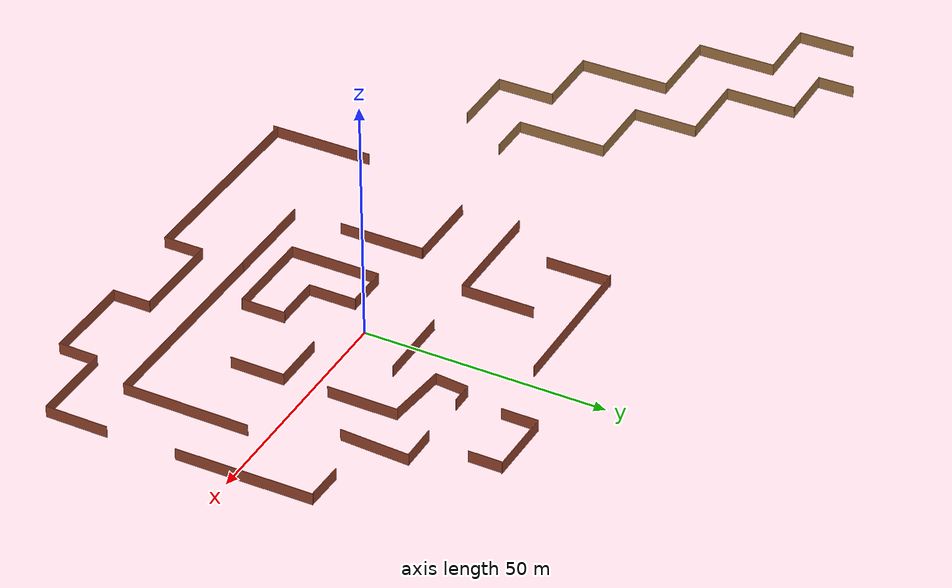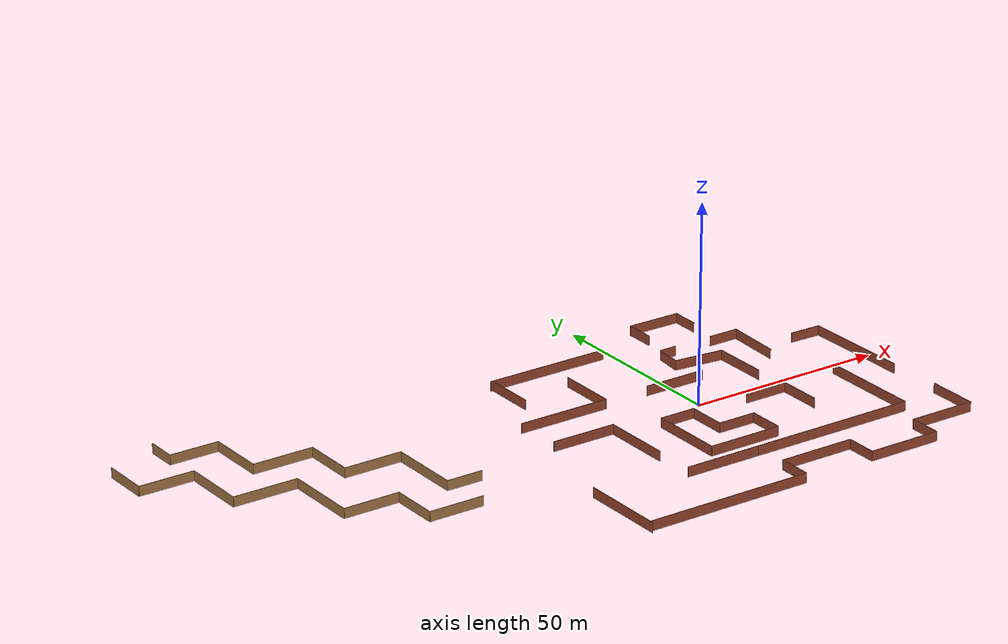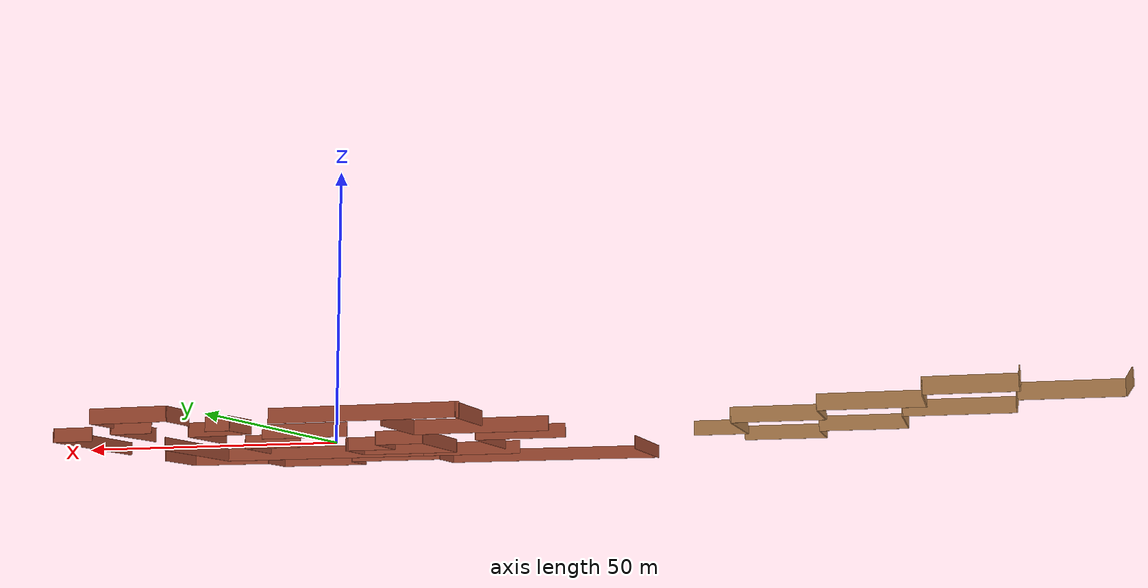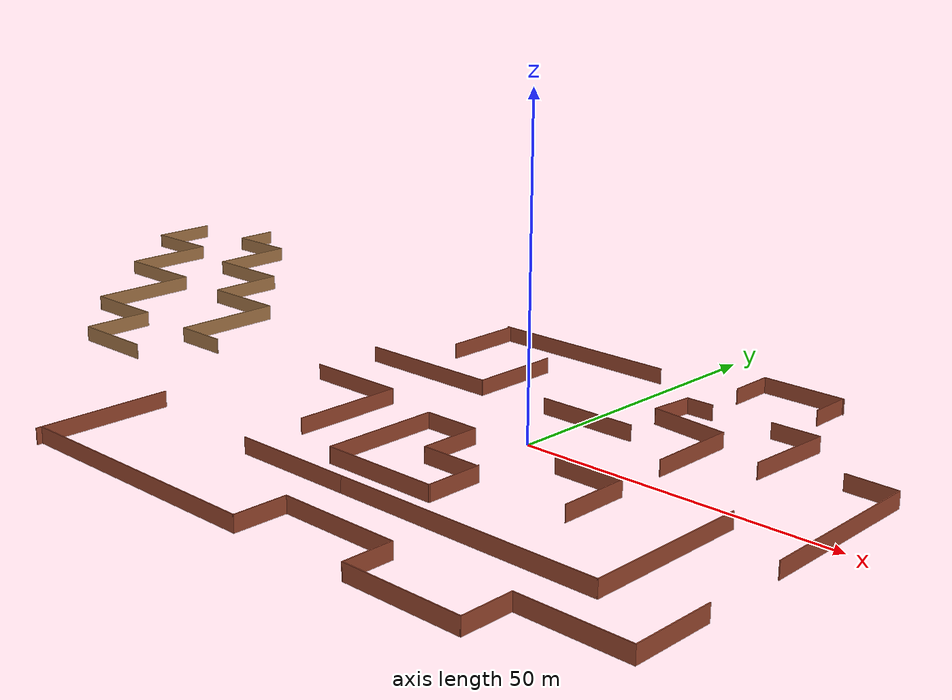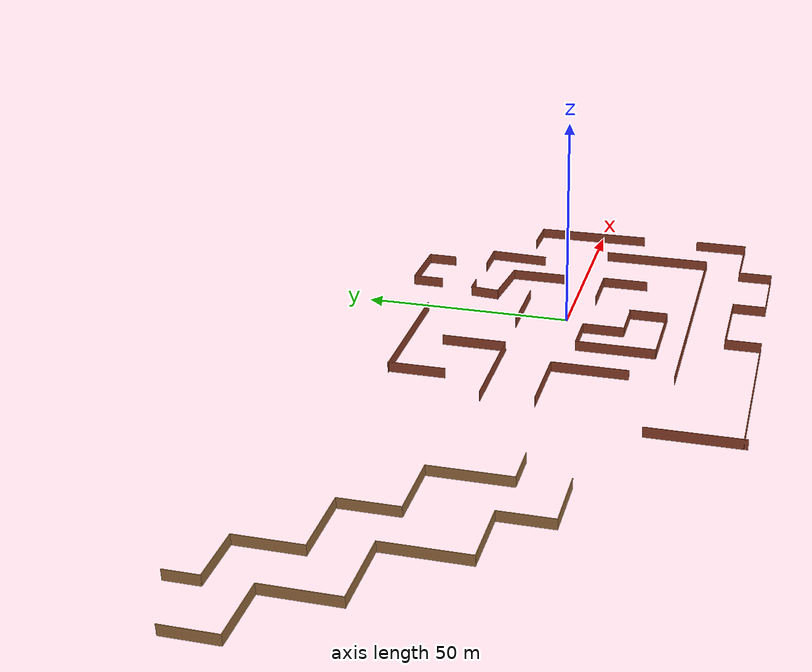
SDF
<?xml version='1.0'?>
<sdf version='1.6'>
  <model name='urambumba'>
    <pose frame=''>-40.7011 0.808842 0 0 -0 0</pose>
    <link name='Wall_10'>
      <collision name='Wall_10_Collision'>
        <geometry>
          <box>
            <size>18 0.15 2.5</size>
          </box>
        </geometry>
        <pose frame=''>0 0 1.25 0 -0 0</pose>
      </collision>
      <visual name='Wall_10_Visual'>
        <pose frame=''>0 0 1.25 0 -0 0</pose>
        <geometry>
          <box>
            <size>18 0.15 2.5</size>
          </box>
        </geometry>
        <material>
          <script>
            <uri>file://media/materials/scripts/gazebo.material</uri>
            <name>Gazebo/Bricks</name>
          </script>
          <ambient>1 1 1 1</ambient>
        </material>
        <meta>
          <layer>0</layer>
        </meta>
      </visual>
      <pose frame=''>15.1254 -11.29 0 0 -0 1.5708</pose>
    </link>
    <link name='Wall_11'>
      <collision name='Wall_11_Collision'>
        <geometry>
          <box>
            <size>16.5 0.15 2.5</size>
          </box>
        </geometry>
        <pose frame=''>0 0 1.25 0 -0 0</pose>
      </collision>
      <visual name='Wall_11_Visual'>
        <pose frame=''>0 0 1.25 0 -0 0</pose>
        <geometry>
          <box>
            <size>16.5 0.15 2.5</size>
          </box>
        </geometry>
        <material>
          <script>
            <uri>file://media/materials/scripts/gazebo.material</uri>
            <name>Gazebo/Bricks</name>
          </script>
          <ambient>1 1 1 1</ambient>
        </material>
        <meta>
          <layer>0</layer>
        </meta>
      </visual>
      <pose frame=''>6.95037 -2.36503 0 0 -0 3.14159</pose>
    </link>
    <link name='Wall_13'>
      <collision name='Wall_13_Collision'>
        <geometry>
          <box>
            <size>23.75 0.15 2.5</size>
          </box>
        </geometry>
        <pose frame=''>0 0 1.25 0 -0 0</pose>
      </collision>
      <visual name='Wall_13_Visual'>
        <pose frame=''>0 0 1.25 0 -0 0</pose>
        <geometry>
          <box>
            <size>23.75 0.15 2.5</size>
          </box>
        </geometry>
        <material>
          <script>
            <uri>file://media/materials/scripts/gazebo.material</uri>
            <name>Gazebo/Bricks</name>
          </script>
          <ambient>1 1 1 1</ambient>
        </material>
        <meta>
          <layer>0</layer>
        </meta>
      </visual>
      <pose frame=''>10.2315 9.8994 0 0 -0 0</pose>
    </link>
    <link name='Wall_14'>
      <collision name='Wall_14_Collision'>
        <geometry>
          <box>
            <size>15.25 0.15 2.5</size>
          </box>
        </geometry>
        <pose frame=''>0 0 1.25 0 -0 0</pose>
      </collision>
      <visual name='Wall_14_Visual'>
        <pose frame=''>0 0 1.25 0 -0 0</pose>
        <geometry>
          <box>
            <size>15.25 0.15 2.5</size>
          </box>
        </geometry>
        <material>
          <script>
            <uri>file://media/materials/scripts/gazebo.material</uri>
            <name>Gazebo/Bricks</name>
          </script>
          <ambient>1 1 1 1</ambient>
        </material>
        <meta>
          <layer>0</layer>
        </meta>
      </visual>
      <pose frame=''>22.0315 17.4494 0 0 -0 1.5708</pose>
    </link>
    <link name='Wall_16'>
      <collision name='Wall_16_Collision'>
        <geometry>
          <box>
            <size>32 0.15 2.5</size>
          </box>
        </geometry>
        <pose frame=''>0 0 1.25 0 -0 0</pose>
      </collision>
      <visual name='Wall_16_Visual'>
        <pose frame=''>0 0 1.25 0 -0 0</pose>
        <geometry>
          <box>
            <size>32 0.15 2.5</size>
          </box>
        </geometry>
        <material>
          <script>
            <uri>file://media/materials/scripts/gazebo.material</uri>
            <name>Gazebo/Bricks</name>
          </script>
          <ambient>1 1 1 1</ambient>
        </material>
        <meta>
          <layer>0</layer>
        </meta>
      </visual>
      <pose frame=''>22.0488 33.3036 0 0 -0 0</pose>
    </link>
    <link name='Wall_18'>
      <collision name='Wall_18_Collision'>
        <geometry>
          <box>
            <size>13.5 0.15 2.5</size>
          </box>
        </geometry>
        <pose frame=''>0 0 1.25 0 -0 0</pose>
      </collision>
      <visual name='Wall_18_Visual'>
        <pose frame=''>0 0 1.25 0 -0 0</pose>
        <geometry>
          <box>
            <size>13.5 0.15 2.5</size>
          </box>
        </geometry>
        <material>
          <script>
            <uri>file://media/materials/scripts/gazebo.material</uri>
            <name>Gazebo/Bricks</name>
          </script>
          <ambient>1 1 1 1</ambient>
        </material>
        <meta>
          <layer>0</layer>
        </meta>
      </visual>
      <pose frame=''>6.61477 26.7922 0 0 -0 -1.5708</pose>
    </link>
    <link name='Wall_2'>
      <collision name='Wall_2_Collision'>
        <geometry>
          <box>
            <size>19.75 0.15 2.5</size>
          </box>
        </geometry>
        <pose frame=''>0 0 1.25 0 -0 0</pose>
      </collision>
      <visual name='Wall_2_Visual'>
        <pose frame=''>0 0 1.25 0 -0 0</pose>
        <geometry>
          <box>
            <size>19.75 0.15 2.5</size>
          </box>
        </geometry>
        <material>
          <script>
            <uri>file://media/materials/scripts/gazebo.material</uri>
            <name>Gazebo/Bricks</name>
          </script>
          <ambient>1 1 1 1</ambient>
        </material>
        <meta>
          <layer>0</layer>
        </meta>
      </visual>
      <pose frame=''>25.089 -30.5259 0 0 -0 0</pose>
    </link>
    <link name='Wall_21'>
      <collision name='Wall_21_Collision'>
        <geometry>
          <box>
            <size>16 0.15 2.5</size>
          </box>
        </geometry>
        <pose frame=''>0 0 1.25 0 -0 0</pose>
      </collision>
      <visual name='Wall_21_Visual'>
        <pose frame=''>0 0 1.25 0 -0 0</pose>
        <geometry>
          <box>
            <size>16 0.15 2.5</size>
          </box>
        </geometry>
        <material>
          <script>
            <uri>file://media/materials/scripts/gazebo.material</uri>
            <name>Gazebo/Bricks</name>
          </script>
          <ambient>1 1 1 1</ambient>
        </material>
        <meta>
          <layer>0</layer>
        </meta>
      </visual>
      <pose frame=''>42.0356 10.3904 0 0 -0 0</pose>
    </link>
    <link name='Wall_26'>
      <collision name='Wall_26_Collision'>
        <geometry>
          <box>
            <size>9.35849 0.15 2.5</size>
          </box>
        </geometry>
        <pose frame=''>0 0 1.25 0 -0 0</pose>
      </collision>
      <visual name='Wall_26_Visual'>
        <pose frame=''>0 0 1.25 0 -0 0</pose>
        <geometry>
          <box>
            <size>9.35849 0.15 2.5</size>
          </box>
        </geometry>
        <material>
          <script>
            <uri>file://media/materials/scripts/gazebo.material</uri>
            <name>Gazebo/Bricks</name>
          </script>
          <ambient>1 1 1 1</ambient>
        </material>
        <meta>
          <layer>0</layer>
        </meta>
      </visual>
      <pose frame=''>45.059 -20.0809 0 0 -0 -1.5708</pose>
    </link>
    <link name='Wall_27'>
      <collision name='Wall_27_Collision'>
        <geometry>
          <box>
            <size>19 0.15 2.5</size>
          </box>
        </geometry>
        <pose frame=''>0 0 1.25 0 -0 0</pose>
      </collision>
      <visual name='Wall_27_Visual'>
        <pose frame=''>0 0 1.25 0 -0 0</pose>
        <geometry>
          <box>
            <size>19 0.15 2.5</size>
          </box>
        </geometry>
        <material>
          <script>
            <uri>file://media/materials/scripts/gazebo.material</uri>
            <name>Gazebo/Bricks</name>
          </script>
          <ambient>1 1 1 1</ambient>
        </material>
        <meta>
          <layer>0</layer>
        </meta>
      </visual>
      <pose frame=''>35.634 -24.6851 0 0 -0 3.14159</pose>
    </link>
    <link name='Wall_28'>
      <collision name='Wall_28_Collision'>
        <geometry>
          <box>
            <size>19 0.15 2.5</size>
          </box>
        </geometry>
        <pose frame=''>0 0 1.25 0 -0 0</pose>
      </collision>
      <visual name='Wall_28_Visual'>
        <pose frame=''>0 0 1.25 0 -0 0</pose>
        <geometry>
          <box>
            <size>19 0.15 2.5</size>
          </box>
        </geometry>
        <material>
          <script>
            <uri>file://media/materials/scripts/gazebo.material</uri>
            <name>Gazebo/Bricks</name>
          </script>
          <ambient>1 1 1 1</ambient>
        </material>
        <meta>
          <layer>0</layer>
        </meta>
      </visual>
      <pose frame=''>26.209 -15.2601 0 0 -0 1.5708</pose>
    </link>
    <link name='Wall_3'>
      <collision name='Wall_3_Collision'>
        <geometry>
          <box>
            <size>42.5 0.15 2.5</size>
          </box>
        </geometry>
        <pose frame=''>0 0 1.25 0 -0 0</pose>
      </collision>
      <visual name='Wall_3_Visual'>
        <pose frame=''>0 0 1.25 0 -0 0</pose>
        <geometry>
          <box>
            <size>42.5 0.15 2.5</size>
          </box>
        </geometry>
        <material>
          <script>
            <uri>file://media/materials/scripts/gazebo.material</uri>
            <name>Gazebo/Bricks</name>
          </script>
          <ambient>1 1 1 1</ambient>
        </material>
        <meta>
          <layer>0</layer>
        </meta>
      </visual>
      <pose frame=''>56.064 -30.5259 0 0 -0 0</pose>
    </link>
    <link name='Wall_30'>
      <collision name='Wall_30_Collision'>
        <geometry>
          <box>
            <size>9.25 0.15 2.5</size>
          </box>
        </geometry>
        <pose frame=''>0 0 1.25 0 -0 0</pose>
      </collision>
      <visual name='Wall_30_Visual'>
        <pose frame=''>0 0 1.25 0 -0 0</pose>
        <geometry>
          <box>
            <size>9.25 0.15 2.5</size>
          </box>
        </geometry>
        <material>
          <script>
            <uri>file://media/materials/scripts/gazebo.material</uri>
            <name>Gazebo/Bricks</name>
          </script>
          <ambient>1 1 1 1</ambient>
        </material>
        <meta>
          <layer>0</layer>
        </meta>
      </visual>
      <pose frame=''>30.759 -5.83514 0 0 -0 0</pose>
    </link>
    <link name='Wall_31'>
      <collision name='Wall_31_Collision'>
        <geometry>
          <box>
            <size>10 0.15 2.5</size>
          </box>
        </geometry>
        <pose frame=''>0 0 1.25 0 -0 0</pose>
      </collision>
      <visual name='Wall_31_Visual'>
        <pose frame=''>0 0 1.25 0 -0 0</pose>
        <geometry>
          <box>
            <size>10 0.15 2.5</size>
          </box>
        </geometry>
        <material>
          <script>
            <uri>file://media/materials/scripts/gazebo.material</uri>
            <name>Gazebo/Bricks</name>
          </script>
          <ambient>1 1 1 1</ambient>
        </material>
        <meta>
          <layer>0</layer>
        </meta>
      </visual>
      <pose frame=''>35.309 -10.7601 0 0 -0 -1.5708</pose>
    </link>
    <link name='Wall_32'>
      <collision name='Wall_32_Collision'>
        <geometry>
          <box>
            <size>9.5 0.15 2.5</size>
          </box>
        </geometry>
        <pose frame=''>0 0 1.25 0 -0 0</pose>
      </collision>
      <visual name='Wall_32_Visual'>
        <pose frame=''>0 0 1.25 0 -0 0</pose>
        <geometry>
          <box>
            <size>9.5 0.15 2.5</size>
          </box>
        </geometry>
        <material>
          <script>
            <uri>file://media/materials/scripts/gazebo.material</uri>
            <name>Gazebo/Bricks</name>
          </script>
          <ambient>1 1 1 1</ambient>
        </material>
        <meta>
          <layer>0</layer>
        </meta>
      </visual>
      <pose frame=''>39.984 -15.6851 0 0 -0 0</pose>
    </link>
    <link name='Wall_34'>
      <collision name='Wall_34_Collision'>
        <geometry>
          <box>
            <size>14.5 0.15 2.5</size>
          </box>
        </geometry>
        <pose frame=''>0 0 1.25 0 -0 0</pose>
      </collision>
      <visual name='Wall_34_Visual'>
        <pose frame=''>0 0 1.25 0 -0 0</pose>
        <geometry>
          <box>
            <size>14.5 0.15 2.5</size>
          </box>
        </geometry>
        <material>
          <script>
            <uri>file://media/materials/scripts/gazebo.material</uri>
            <name>Gazebo/Bricks</name>
          </script>
          <ambient>1 1 1 1</ambient>
        </material>
        <meta>
          <layer>0</layer>
        </meta>
      </visual>
      <pose frame=''>60.7753 9.99505 0 0 -0 1.5708</pose>
    </link>
    <link name='Wall_35'>
      <collision name='Wall_35_Collision'>
        <geometry>
          <box>
            <size>12.6255 0.15 2.5</size>
          </box>
        </geometry>
        <pose frame=''>0 0 1.25 0 -0 0</pose>
      </collision>
      <visual name='Wall_35_Visual'>
        <pose frame=''>0 0 1.25 0 -0 0</pose>
        <geometry>
          <box>
            <size>12.6255 0.15 2.5</size>
          </box>
        </geometry>
        <material>
          <script>
            <uri>file://media/materials/scripts/gazebo.material</uri>
            <name>Gazebo/Bricks</name>
          </script>
          <ambient>1 1 1 1</ambient>
        </material>
        <meta>
          <layer>0</layer>
        </meta>
      </visual>
      <pose frame=''>54.4904 17.7364 0 0 -0 3.03764</pose>
    </link>
    <link name='Wall_36'>
      <collision name='Wall_36_Collision'>
        <geometry>
          <box>
            <size>7.05431 0.15 2.5</size>
          </box>
        </geometry>
        <pose frame=''>0 0 1.25 0 -0 0</pose>
      </collision>
      <visual name='Wall_36_Visual'>
        <pose frame=''>0 0 1.25 0 -0 0</pose>
        <geometry>
          <box>
            <size>7.05431 0.15 2.5</size>
          </box>
        </geometry>
        <material>
          <script>
            <uri>file://media/materials/scripts/gazebo.material</uri>
            <name>Gazebo/Bricks</name>
          </script>
          <ambient>1 1 1 1</ambient>
        </material>
        <meta>
          <layer>0</layer>
        </meta>
      </visual>
      <pose frame=''>48.6118 21.8205 0 0 -0 1.47637</pose>
    </link>
    <link name='Wall_38'>
      <collision name='Wall_38_Collision'>
        <geometry>
          <box>
            <size>14.2885 0.15 2.5</size>
          </box>
        </geometry>
        <pose frame=''>0 0 1.25 0 -0 0</pose>
      </collision>
      <visual name='Wall_38_Visual'>
        <pose frame=''>0 0 1.25 0 -0 0</pose>
        <geometry>
          <box>
            <size>14.2885 0.15 2.5</size>
          </box>
        </geometry>
        <material>
          <script>
            <uri>file://media/materials/scripts/gazebo.material</uri>
            <name>Gazebo/Bricks</name>
          </script>
          <ambient>1 1 1 1</ambient>
        </material>
        <meta>
          <layer>0</layer>
        </meta>
      </visual>
      <pose frame=''>70.8557 18.0885 0 0 -0 -1.61685</pose>
    </link>
    <link name='Wall_4'>
      <collision name='Wall_4_Collision'>
        <geometry>
          <box>
            <size>26.25 0.15 2.5</size>
          </box>
        </geometry>
        <pose frame=''>0 0 1.25 0 -0 0</pose>
      </collision>
      <visual name='Wall_4_Visual'>
        <pose frame=''>0 0 1.25 0 -0 0</pose>
        <geometry>
          <box>
            <size>26.25 0.15 2.5</size>
          </box>
        </geometry>
        <material>
          <script>
            <uri>file://media/materials/scripts/gazebo.material</uri>
            <name>Gazebo/Bricks</name>
          </script>
          <ambient>1 1 1 1</ambient>
        </material>
        <meta>
          <layer>0</layer>
        </meta>
      </visual>
      <pose frame=''>77.239 -17.4759 0 0 -0 1.5708</pose>
    </link>
    <link name='Wall_40'>
      <collision name='Wall_40_Collision'>
        <geometry>
          <box>
            <size>4.5 0.15 2.5</size>
          </box>
        </geometry>
        <pose frame=''>0 0 1.25 0 -0 0</pose>
      </collision>
      <visual name='Wall_40_Visual'>
        <pose frame=''>0 0 1.25 0 -0 0</pose>
        <geometry>
          <box>
            <size>4.5 0.15 2.5</size>
          </box>
        </geometry>
        <material>
          <script>
            <uri>file://media/materials/scripts/gazebo.material</uri>
            <name>Gazebo/Bricks</name>
          </script>
          <ambient>1 1 1 1</ambient>
        </material>
        <meta>
          <layer>0</layer>
        </meta>
      </visual>
      <pose frame=''>51.1123 25.2573 0 0 -0 0</pose>
    </link>
    <link name='Wall_42'>
      <collision name='Wall_42_Collision'>
        <geometry>
          <box>
            <size>7.75 0.15 2.5</size>
          </box>
        </geometry>
        <pose frame=''>0 0 1.25 0 -0 0</pose>
      </collision>
      <visual name='Wall_42_Visual'>
        <pose frame=''>0 0 1.25 0 -0 0</pose>
        <geometry>
          <box>
            <size>7.75 0.15 2.5</size>
          </box>
        </geometry>
        <material>
          <script>
            <uri>file://media/materials/scripts/gazebo.material</uri>
            <name>Gazebo/Bricks</name>
          </script>
          <ambient>1 1 1 1</ambient>
        </material>
        <meta>
          <layer>0</layer>
        </meta>
      </visual>
      <pose frame=''>67.2801 25.1282 0 0 -0 3.14159</pose>
    </link>
    <link name='Wall_44'>
      <collision name='Wall_44_Collision'>
        <geometry>
          <box>
            <size>7.84706 0.15 2.5</size>
          </box>
        </geometry>
        <pose frame=''>0 0 1.25 0 -0 0</pose>
      </collision>
      <visual name='Wall_44_Visual'>
        <pose frame=''>0 0 1.25 0 -0 0</pose>
        <geometry>
          <box>
            <size>7.84706 0.15 2.5</size>
          </box>
        </geometry>
        <material>
          <script>
            <uri>file://media/materials/scripts/gazebo.material</uri>
            <name>Gazebo/Bricks</name>
          </script>
          <ambient>1 1 1 1</ambient>
        </material>
        <meta>
          <layer>0</layer>
        </meta>
      </visual>
      <pose frame=''>84.466 15.5754 0 0 -0 -0.027582</pose>
    </link>
    <link name='Wall_45'>
      <collision name='Wall_45_Collision'>
        <geometry>
          <box>
            <size>27.9655 0.15 2.5</size>
          </box>
        </geometry>
        <pose frame=''>0 0 1.25 0 -0 0</pose>
      </collision>
      <visual name='Wall_45_Visual'>
        <pose frame=''>0 0 1.25 0 -0 0</pose>
        <geometry>
          <box>
            <size>27.9655 0.15 2.5</size>
          </box>
        </geometry>
        <material>
          <script>
            <uri>file://media/materials/scripts/gazebo.material</uri>
            <name>Gazebo/Bricks</name>
          </script>
          <ambient>1 1 1 1</ambient>
        </material>
        <meta>
          <layer>0</layer>
        </meta>
      </visual>
      <pose frame=''>88.7376 1.56315 0 0 -0 -1.55553</pose>
    </link>
    <link name='Wall_47'>
      <collision name='Wall_47_Collision'>
        <geometry>
          <box>
            <size>7.5 0.15 2.5</size>
          </box>
        </geometry>
        <pose frame=''>0 0 1.25 0 -0 0</pose>
      </collision>
      <visual name='Wall_47_Visual'>
        <pose frame=''>0 0 1.25 0 -0 0</pose>
        <geometry>
          <box>
            <size>7.5 0.15 2.5</size>
          </box>
        </geometry>
        <material>
          <script>
            <uri>file://media/materials/scripts/gazebo.material</uri>
            <name>Gazebo/Bricks</name>
          </script>
          <ambient>1 1 1 1</ambient>
        </material>
        <meta>
          <layer>0</layer>
        </meta>
      </visual>
      <pose frame=''>51.8385 37.4476 0 0 -0 1.5708</pose>
    </link>
    <link name='Wall_48'>
      <collision name='Wall_48_Collision'>
        <geometry>
          <box>
            <size>13.8462 0.15 2.5</size>
          </box>
        </geometry>
        <pose frame=''>0 0 1.25 0 -0 0</pose>
      </collision>
      <visual name='Wall_48_Visual'>
        <pose frame=''>0 0 1.25 0 -0 0</pose>
        <geometry>
          <box>
            <size>13.8462 0.15 2.5</size>
          </box>
        </geometry>
        <material>
          <script>
            <uri>file://media/materials/scripts/gazebo.material</uri>
            <name>Gazebo/Bricks</name>
          </script>
          <ambient>1 1 1 1</ambient>
        </material>
        <meta>
          <layer>0</layer>
        </meta>
      </visual>
      <pose frame=''>58.6857 41.0165 0 0 -0 -0.015499</pose>
    </link>
    <link name='Wall_49'>
      <collision name='Wall_49_Collision'>
        <geometry>
          <box>
            <size>7 0.15 2.5</size>
          </box>
        </geometry>
        <pose frame=''>0 0 1.25 0 -0 0</pose>
      </collision>
      <visual name='Wall_49_Visual'>
        <pose frame=''>0 0 1.25 0 -0 0</pose>
        <geometry>
          <box>
            <size>7 0.15 2.5</size>
          </box>
        </geometry>
        <material>
          <script>
            <uri>file://media/materials/scripts/gazebo.material</uri>
            <name>Gazebo/Bricks</name>
          </script>
          <ambient>1 1 1 1</ambient>
        </material>
        <meta>
          <layer>0</layer>
        </meta>
      </visual>
      <pose frame=''>65.3207 37.4854 0 0 -0 -1.5708</pose>
    </link>
    <link name='Wall_51'>
      <collision name='Wall_51_Collision'>
        <geometry>
          <box>
            <size>22 0.15 2.5</size>
          </box>
        </geometry>
        <pose frame=''>0 0 1.25 0 -0 0</pose>
      </collision>
      <visual name='Wall_51_Visual'>
        <pose frame=''>0 0 1.25 0 -0 0</pose>
        <geometry>
          <box>
            <size>22 0.15 2.5</size>
          </box>
        </geometry>
        <material>
          <script>
            <uri>file://media/materials/scripts/gazebo.material</uri>
            <name>Gazebo/Bricks</name>
          </script>
          <ambient>1 1 1 1</ambient>
        </material>
        <meta>
          <layer>0</layer>
        </meta>
      </visual>
      <pose frame=''>-8.05007 -37.8904 0 0 -0 -1.5708</pose>
    </link>
    <link name='Wall_53'>
      <collision name='Wall_53_Collision'>
        <geometry>
          <box>
            <size>43 0.15 2.5</size>
          </box>
        </geometry>
        <pose frame=''>0 0 1.25 0 -0 0</pose>
      </collision>
      <visual name='Wall_53_Visual'>
        <pose frame=''>0 0 1.25 0 -0 0</pose>
        <geometry>
          <box>
            <size>43 0.15 2.5</size>
          </box>
        </geometry>
        <material>
          <script>
            <uri>file://media/materials/scripts/gazebo.material</uri>
            <name>Gazebo/Bricks</name>
          </script>
          <ambient>1 1 1 1</ambient>
        </material>
        <meta>
          <layer>0</layer>
        </meta>
      </visual>
      <pose frame=''>13.3749 -47.9803 0 0 -0 0</pose>
    </link>
    <link name='Wall_54'>
      <collision name='Wall_54_Collision'>
        <geometry>
          <box>
            <size>8.5 0.15 2.5</size>
          </box>
        </geometry>
        <pose frame=''>0 0 1.25 0 -0 0</pose>
      </collision>
      <visual name='Wall_54_Visual'>
        <pose frame=''>0 0 1.25 0 -0 0</pose>
        <geometry>
          <box>
            <size>8.5 0.15 2.5</size>
          </box>
        </geometry>
        <material>
          <script>
            <uri>file://media/materials/scripts/gazebo.material</uri>
            <name>Gazebo/Bricks</name>
          </script>
          <ambient>1 1 1 1</ambient>
        </material>
        <meta>
          <layer>0</layer>
        </meta>
      </visual>
      <pose frame=''>34.7999 -43.8053 0 0 -0 1.5708</pose>
    </link>
    <link name='Wall_55'>
      <collision name='Wall_55_Collision'>
        <geometry>
          <box>
            <size>19.25 0.15 2.5</size>
          </box>
        </geometry>
        <pose frame=''>0 0 1.25 0 -0 0</pose>
      </collision>
      <visual name='Wall_55_Visual'>
        <pose frame=''>0 0 1.25 0 -0 0</pose>
        <geometry>
          <box>
            <size>19.25 0.15 2.5</size>
          </box>
        </geometry>
        <material>
          <script>
            <uri>file://media/materials/scripts/gazebo.material</uri>
            <name>Gazebo/Bricks</name>
          </script>
          <ambient>1 1 1 1</ambient>
        </material>
        <meta>
          <layer>0</layer>
        </meta>
      </visual>
      <pose frame=''>44.3499 -39.6303 0 0 -0 0</pose>
    </link>
    <link name='Wall_56'>
      <collision name='Wall_56_Collision'>
        <geometry>
          <box>
            <size>8 0.15 2.5</size>
          </box>
        </geometry>
        <pose frame=''>0 0 1.25 0 -0 0</pose>
      </collision>
      <visual name='Wall_56_Visual'>
        <pose frame=''>0 0 1.25 0 -0 0</pose>
        <geometry>
          <box>
            <size>8 0.15 2.5</size>
          </box>
        </geometry>
        <material>
          <script>
            <uri>file://media/materials/scripts/gazebo.material</uri>
            <name>Gazebo/Bricks</name>
          </script>
          <ambient>1 1 1 1</ambient>
        </material>
        <meta>
          <layer>0</layer>
        </meta>
      </visual>
      <pose frame=''>53.8999 -43.5553 0 0 -0 -1.5708</pose>
    </link>
    <link name='Wall_57'>
      <collision name='Wall_57_Collision'>
        <geometry>
          <box>
            <size>18.75 0.15 2.5</size>
          </box>
        </geometry>
        <pose frame=''>0 0 1.25 0 -0 0</pose>
      </collision>
      <visual name='Wall_57_Visual'>
        <pose frame=''>0 0 1.25 0 -0 0</pose>
        <geometry>
          <box>
            <size>18.75 0.15 2.5</size>
          </box>
        </geometry>
        <material>
          <script>
            <uri>file://media/materials/scripts/gazebo.material</uri>
            <name>Gazebo/Bricks</name>
          </script>
          <ambient>1 1 1 1</ambient>
        </material>
        <meta>
          <layer>0</layer>
        </meta>
      </visual>
      <pose frame=''>63.1999 -47.4803 0 0 -0 0</pose>
    </link>
    <link name='Wall_58'>
      <collision name='Wall_58_Collision'>
        <geometry>
          <box>
            <size>8.25 0.15 2.5</size>
          </box>
        </geometry>
        <pose frame=''>0 0 1.25 0 -0 0</pose>
      </collision>
      <visual name='Wall_58_Visual'>
        <pose frame=''>0 0 1.25 0 -0 0</pose>
        <geometry>
          <box>
            <size>8.25 0.15 2.5</size>
          </box>
        </geometry>
        <material>
          <script>
            <uri>file://media/materials/scripts/gazebo.material</uri>
            <name>Gazebo/Bricks</name>
          </script>
          <ambient>1 1 1 1</ambient>
        </material>
        <meta>
          <layer>0</layer>
        </meta>
      </visual>
      <pose frame=''>72.4999 -43.4303 0 0 -0 1.5708</pose>
    </link>
    <link name='Wall_59'>
      <collision name='Wall_59_Collision'>
        <geometry>
          <box>
            <size>17 0.15 2.5</size>
          </box>
        </geometry>
        <pose frame=''>0 0 1.25 0 -0 0</pose>
      </collision>
      <visual name='Wall_59_Visual'>
        <pose frame=''>0 0 1.25 0 -0 0</pose>
        <geometry>
          <box>
            <size>17 0.15 2.5</size>
          </box>
        </geometry>
        <material>
          <script>
            <uri>file://media/materials/scripts/gazebo.material</uri>
            <name>Gazebo/Bricks</name>
          </script>
          <ambient>1 1 1 1</ambient>
        </material>
        <meta>
          <layer>0</layer>
        </meta>
      </visual>
      <pose frame=''>80.9249 -39.3803 0 0 -0 0</pose>
    </link>
    <link name='Wall_60'>
      <collision name='Wall_60_Collision'>
        <geometry>
          <box>
            <size>13 0.15 2.5</size>
          </box>
        </geometry>
        <pose frame=''>0 0 1.25 0 -0 0</pose>
      </collision>
      <visual name='Wall_60_Visual'>
        <pose frame=''>0 0 1.25 0 -0 0</pose>
        <geometry>
          <box>
            <size>13 0.15 2.5</size>
          </box>
        </geometry>
        <material>
          <script>
            <uri>file://media/materials/scripts/gazebo.material</uri>
            <name>Gazebo/Bricks</name>
          </script>
          <ambient>1 1 1 1</ambient>
        </material>
        <meta>
          <layer>0</layer>
        </meta>
      </visual>
      <pose frame=''>89.3499 -32.9552 0 0 -0 1.5708</pose>
    </link>
    <link name='Wall_62'>
      <collision name='Wall_62_Collision'>
        <geometry>
          <box>
            <size>12 0.15 2.5</size>
          </box>
        </geometry>
        <pose frame=''>0 0 1.25 0 -0 0</pose>
      </collision>
      <visual name='Wall_62_Visual'>
        <pose frame=''>0 0 1.25 0 -0 0</pose>
        <geometry>
          <box>
            <size>12 0.15 2.5</size>
          </box>
        </geometry>
        <material>
          <script>
            <uri>file://media/materials/scripts/gazebo.material</uri>
            <name>Gazebo/Wood</name>
          </script>
          <ambient>1 1 1 1</ambient>
        </material>
        <meta>
          <layer>0</layer>
        </meta>
      </visual>
      <pose frame=''>-89.3499 36.9468 0 0 -0 -1.5708</pose>
    </link>
    <link name='Wall_63'>
      <collision name='Wall_63_Collision'>
        <geometry>
          <box>
            <size>14.25 0.15 2.5</size>
          </box>
        </geometry>
        <pose frame=''>0 0 1.25 0 -0 0</pose>
      </collision>
      <visual name='Wall_63_Visual'>
        <pose frame=''>0 0 1.25 0 -0 0</pose>
        <geometry>
          <box>
            <size>14.25 0.15 2.5</size>
          </box>
        </geometry>
        <material>
          <script>
            <uri>file://media/materials/scripts/gazebo.material</uri>
            <name>Gazebo/Wood</name>
          </script>
          <ambient>1 1 1 1</ambient>
        </material>
        <meta>
          <layer>0</layer>
        </meta>
      </visual>
      <pose frame=''>-82.2999 31.0218 0 0 -0 0</pose>
    </link>
    <link name='Wall_64'>
      <collision name='Wall_64_Collision'>
        <geometry>
          <box>
            <size>16.75 0.15 2.5</size>
          </box>
        </geometry>
        <pose frame=''>0 0 1.25 0 -0 0</pose>
      </collision>
      <visual name='Wall_64_Visual'>
        <pose frame=''>0 0 1.25 0 -0 0</pose>
        <geometry>
          <box>
            <size>16.75 0.15 2.5</size>
          </box>
        </geometry>
        <material>
          <script>
            <uri>file://media/materials/scripts/gazebo.material</uri>
            <name>Gazebo/Wood</name>
          </script>
          <ambient>1 1 1 1</ambient>
        </material>
        <meta>
          <layer>0</layer>
        </meta>
      </visual>
      <pose frame=''>-75.2499 22.7218 0 0 -0 -1.5708</pose>
    </link>
    <link name='Wall_65'>
      <collision name='Wall_65_Collision'>
        <geometry>
          <box>
            <size>16.75 0.15 2.5</size>
          </box>
        </geometry>
        <pose frame=''>0 0 1.25 0 -0 0</pose>
      </collision>
      <visual name='Wall_65_Visual'>
        <pose frame=''>0 0 1.25 0 -0 0</pose>
        <geometry>
          <box>
            <size>16.75 0.15 2.5</size>
          </box>
        </geometry>
        <material>
          <script>
            <uri>file://media/materials/scripts/gazebo.material</uri>
            <name>Gazebo/Wood</name>
          </script>
          <ambient>1 1 1 1</ambient>
        </material>
        <meta>
          <layer>0</layer>
        </meta>
      </visual>
      <pose frame=''>-66.9499 14.4218 0 0 -0 0</pose>
    </link>
    <link name='Wall_66'>
      <collision name='Wall_66_Collision'>
        <geometry>
          <box>
            <size>19 0.15 2.5</size>
          </box>
        </geometry>
        <pose frame=''>0 0 1.25 0 -0 0</pose>
      </collision>
      <visual name='Wall_66_Visual'>
        <pose frame=''>0 0 1.25 0 -0 0</pose>
        <geometry>
          <box>
            <size>19 0.15 2.5</size>
          </box>
        </geometry>
        <material>
          <script>
            <uri>file://media/materials/scripts/gazebo.material</uri>
            <name>Gazebo/Wood</name>
          </script>
          <ambient>1 1 1 1</ambient>
        </material>
        <meta>
          <layer>0</layer>
        </meta>
      </visual>
      <pose frame=''>-58.6499 4.99681 0 0 -0 -1.5708</pose>
    </link>
    <link name='Wall_67'>
      <collision name='Wall_67_Collision'>
        <geometry>
          <box>
            <size>14.5 0.15 2.5</size>
          </box>
        </geometry>
        <pose frame=''>0 0 1.25 0 -0 0</pose>
      </collision>
      <visual name='Wall_67_Visual'>
        <pose frame=''>0 0 1.25 0 -0 0</pose>
        <geometry>
          <box>
            <size>14.5 0.15 2.5</size>
          </box>
        </geometry>
        <material>
          <script>
            <uri>file://media/materials/scripts/gazebo.material</uri>
            <name>Gazebo/Wood</name>
          </script>
          <ambient>1 1 1 1</ambient>
        </material>
        <meta>
          <layer>0</layer>
        </meta>
      </visual>
      <pose frame=''>-51.4749 -4.42819 0 0 -0 0</pose>
    </link>
    <link name='Wall_68'>
      <collision name='Wall_68_Collision'>
        <geometry>
          <box>
            <size>12.25 0.15 2.5</size>
          </box>
        </geometry>
        <pose frame=''>0 0 1.25 0 -0 0</pose>
      </collision>
      <visual name='Wall_68_Visual'>
        <pose frame=''>0 0 1.25 0 -0 0</pose>
        <geometry>
          <box>
            <size>12.25 0.15 2.5</size>
          </box>
        </geometry>
        <material>
          <script>
            <uri>file://media/materials/scripts/gazebo.material</uri>
            <name>Gazebo/Wood</name>
          </script>
          <ambient>1 1 1 1</ambient>
        </material>
        <meta>
          <layer>0</layer>
        </meta>
      </visual>
      <pose frame=''>-44.2999 -10.4782 0 0 -0 -1.5708</pose>
    </link>
    <link name='Wall_69'>
      <collision name='Wall_69_Collision'>
        <geometry>
          <box>
            <size>14.25 0.15 2.5</size>
          </box>
        </geometry>
        <pose frame=''>0 0 1.25 0 -0 0</pose>
      </collision>
      <visual name='Wall_69_Visual'>
        <pose frame=''>0 0 1.25 0 -0 0</pose>
        <geometry>
          <box>
            <size>14.25 0.15 2.5</size>
          </box>
        </geometry>
        <material>
          <script>
            <uri>file://media/materials/scripts/gazebo.material</uri>
            <name>Gazebo/Wood</name>
          </script>
          <ambient>1 1 1 1</ambient>
        </material>
        <meta>
          <layer>0</layer>
        </meta>
      </visual>
      <pose frame=''>-37.2499 -16.5282 0 0 -0 0</pose>
    </link>
    <link name='Wall_7'>
      <collision name='Wall_7_Collision'>
        <geometry>
          <box>
            <size>11.25 0.15 2.5</size>
          </box>
        </geometry>
        <pose frame=''>0 0 1.25 0 -0 0</pose>
      </collision>
      <visual name='Wall_7_Visual'>
        <pose frame=''>0 0 1.25 0 -0 0</pose>
        <geometry>
          <box>
            <size>11.25 0.15 2.5</size>
          </box>
        </geometry>
        <material>
          <script>
            <uri>file://media/materials/scripts/gazebo.material</uri>
            <name>Gazebo/Bricks</name>
          </script>
          <ambient>1 1 1 1</ambient>
        </material>
        <meta>
          <layer>0</layer>
        </meta>
      </visual>
      <pose frame=''>55.8634 -6.1398 0 0 -0 0</pose>
    </link>
    <link name='Wall_71'>
      <collision name='Wall_71_Collision'>
        <geometry>
          <box>
            <size>7.75 0.15 2.5</size>
          </box>
        </geometry>
        <pose frame=''>0 0 1.25 0 -0 0</pose>
      </collision>
      <visual name='Wall_71_Visual'>
        <pose frame=''>0 0 1.25 0 -0 0</pose>
        <geometry>
          <box>
            <size>7.75 0.15 2.5</size>
          </box>
        </geometry>
        <material>
          <script>
            <uri>file://media/materials/scripts/gazebo.material</uri>
            <name>Gazebo/Wood</name>
          </script>
          <ambient>1 1 1 1</ambient>
        </material>
        <meta>
          <layer>0</layer>
        </meta>
      </visual>
      <pose frame=''>-75.34 45.0154 0 0 -0 -1.5708</pose>
    </link>
    <link name='Wall_72'>
      <collision name='Wall_72_Collision'>
        <geometry>
          <box>
            <size>12.75 0.15 2.5</size>
          </box>
        </geometry>
        <pose frame=''>0 0 1.25 0 -0 0</pose>
      </collision>
      <visual name='Wall_72_Visual'>
        <pose frame=''>0 0 1.25 0 -0 0</pose>
        <geometry>
          <box>
            <size>12.75 0.15 2.5</size>
          </box>
        </geometry>
        <material>
          <script>
            <uri>file://media/materials/scripts/gazebo.material</uri>
            <name>Gazebo/Wood</name>
          </script>
          <ambient>1 1 1 1</ambient>
        </material>
        <meta>
          <layer>0</layer>
        </meta>
      </visual>
      <pose frame=''>-69.04 41.2154 0 0 -0 0</pose>
    </link>
    <link name='Wall_73'>
      <collision name='Wall_73_Collision'>
        <geometry>
          <box>
            <size>15 0.15 2.5</size>
          </box>
        </geometry>
        <pose frame=''>0 0 1.25 0 -0 0</pose>
      </collision>
      <visual name='Wall_73_Visual'>
        <pose frame=''>0 0 1.25 0 -0 0</pose>
        <geometry>
          <box>
            <size>15 0.15 2.5</size>
          </box>
        </geometry>
        <material>
          <script>
            <uri>file://media/materials/scripts/gazebo.material</uri>
            <name>Gazebo/Wood</name>
          </script>
          <ambient>1 1 1 1</ambient>
        </material>
        <meta>
          <layer>0</layer>
        </meta>
      </visual>
      <pose frame=''>-62.74 33.7904 0 0 -0 -1.5708</pose>
    </link>
    <link name='Wall_74'>
      <collision name='Wall_74_Collision'>
        <geometry>
          <box>
            <size>15.75 0.15 2.5</size>
          </box>
        </geometry>
        <pose frame=''>0 0 1.25 0 -0 0</pose>
      </collision>
      <visual name='Wall_74_Visual'>
        <pose frame=''>0 0 1.25 0 -0 0</pose>
        <geometry>
          <box>
            <size>15.75 0.15 2.5</size>
          </box>
        </geometry>
        <material>
          <script>
            <uri>file://media/materials/scripts/gazebo.material</uri>
            <name>Gazebo/Wood</name>
          </script>
          <ambient>1 1 1 1</ambient>
        </material>
        <meta>
          <layer>0</layer>
        </meta>
      </visual>
      <pose frame=''>-54.94 26.3654 0 0 -0 0</pose>
    </link>
    <link name='Wall_75'>
      <collision name='Wall_75_Collision'>
        <geometry>
          <box>
            <size>13.5 0.15 2.5</size>
          </box>
        </geometry>
        <pose frame=''>0 0 1.25 0 -0 0</pose>
      </collision>
      <visual name='Wall_75_Visual'>
        <pose frame=''>0 0 1.25 0 -0 0</pose>
        <geometry>
          <box>
            <size>13.5 0.15 2.5</size>
          </box>
        </geometry>
        <material>
          <script>
            <uri>file://media/materials/scripts/gazebo.material</uri>
            <name>Gazebo/Wood</name>
          </script>
          <ambient>1 1 1 1</ambient>
        </material>
        <meta>
          <layer>0</layer>
        </meta>
      </visual>
      <pose frame=''>-47.14 19.6904 0 0 -0 -1.5708</pose>
    </link>
    <link name='Wall_76'>
      <collision name='Wall_76_Collision'>
        <geometry>
          <box>
            <size>15 0.15 2.5</size>
          </box>
        </geometry>
        <pose frame=''>0 0 1.25 0 -0 0</pose>
      </collision>
      <visual name='Wall_76_Visual'>
        <pose frame=''>0 0 1.25 0 -0 0</pose>
        <geometry>
          <box>
            <size>15 0.15 2.5</size>
          </box>
        </geometry>
        <material>
          <script>
            <uri>file://media/materials/scripts/gazebo.material</uri>
            <name>Gazebo/Wood</name>
          </script>
          <ambient>1 1 1 1</ambient>
        </material>
        <meta>
          <layer>0</layer>
        </meta>
      </visual>
      <pose frame=''>-39.715 13.0154 0 0 -0 0</pose>
    </link>
    <link name='Wall_77'>
      <collision name='Wall_77_Collision'>
        <geometry>
          <box>
            <size>18.75 0.15 2.5</size>
          </box>
        </geometry>
        <pose frame=''>0 0 1.25 0 -0 0</pose>
      </collision>
      <visual name='Wall_77_Visual'>
        <pose frame=''>0 0 1.25 0 -0 0</pose>
        <geometry>
          <box>
            <size>18.75 0.15 2.5</size>
          </box>
        </geometry>
        <material>
          <script>
            <uri>file://media/materials/scripts/gazebo.material</uri>
            <name>Gazebo/Wood</name>
          </script>
          <ambient>1 1 1 1</ambient>
        </material>
        <meta>
          <layer>0</layer>
        </meta>
      </visual>
      <pose frame=''>-32.29 3.7154 0 0 -0 -1.5708</pose>
    </link>
    <link name='Wall_78'>
      <collision name='Wall_78_Collision'>
        <geometry>
          <box>
            <size>9.25 0.15 2.5</size>
          </box>
        </geometry>
        <pose frame=''>0 0 1.25 0 -0 0</pose>
      </collision>
      <visual name='Wall_78_Visual'>
        <pose frame=''>0 0 1.25 0 -0 0</pose>
        <geometry>
          <box>
            <size>9.25 0.15 2.5</size>
          </box>
        </geometry>
        <material>
          <script>
            <uri>file://media/materials/scripts/gazebo.material</uri>
            <name>Gazebo/Wood</name>
          </script>
          <ambient>1 1 1 1</ambient>
        </material>
        <meta>
          <layer>0</layer>
        </meta>
      </visual>
      <pose frame=''>-27.74 -5.5846 0 0 -0 0</pose>
    </link>
    <link name='Wall_8'>
      <collision name='Wall_8_Collision'>
        <geometry>
          <box>
            <size>11.25 0.15 2.5</size>
          </box>
        </geometry>
        <pose frame=''>0 0 1.25 0 -0 0</pose>
      </collision>
      <visual name='Wall_8_Visual'>
        <pose frame=''>0 0 1.25 0 -0 0</pose>
        <geometry>
          <box>
            <size>11.25 0.15 2.5</size>
          </box>
        </geometry>
        <material>
          <script>
            <uri>file://media/materials/scripts/gazebo.material</uri>
            <name>Gazebo/Bricks</name>
          </script>
          <ambient>1 1 1 1</ambient>
        </material>
        <meta>
          <layer>0</layer>
        </meta>
      </visual>
      <pose frame=''>61.4134 -11.6898 0 0 -0 -1.5708</pose>
    </link>
    <static>1</static>
  </model>
</sdf>
